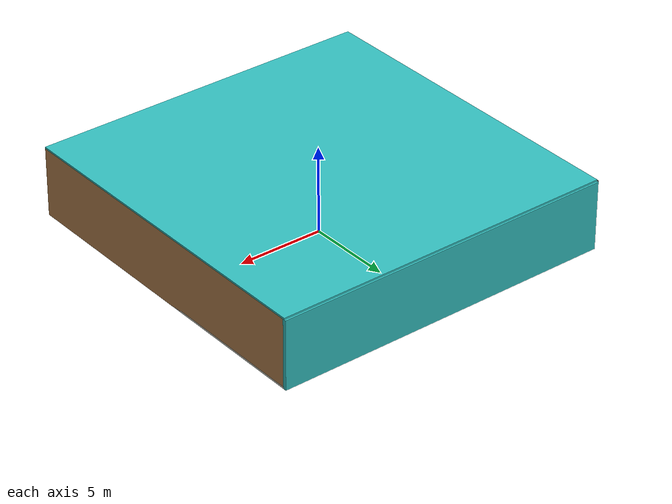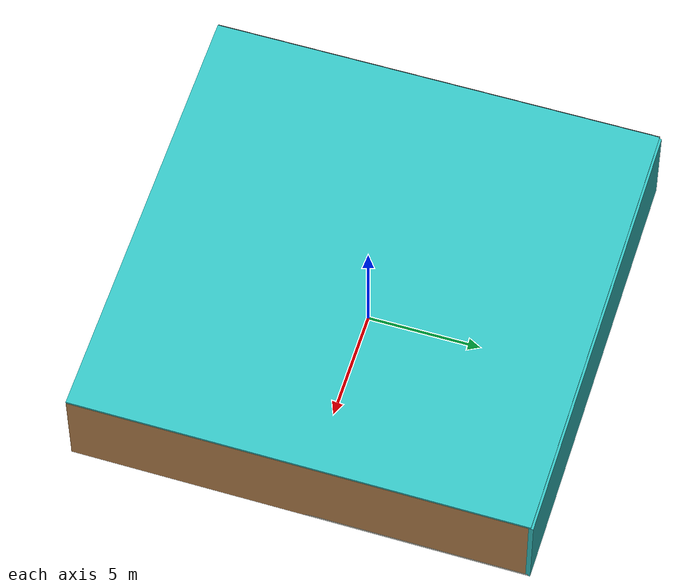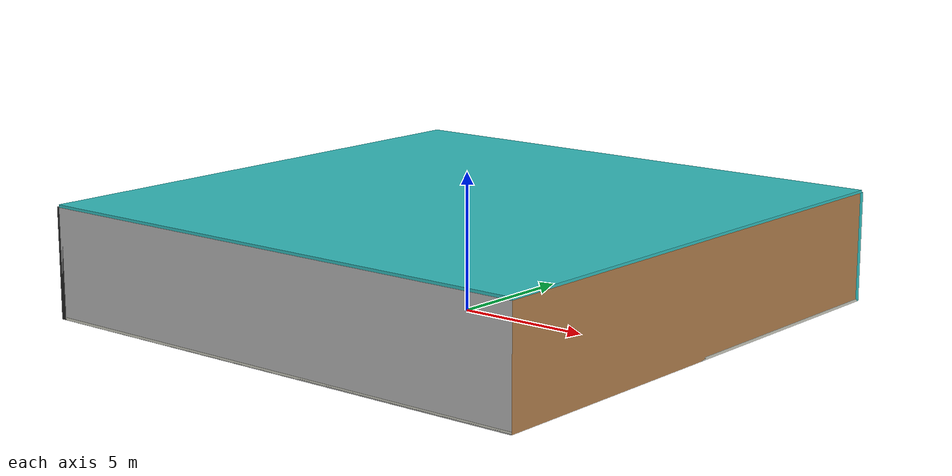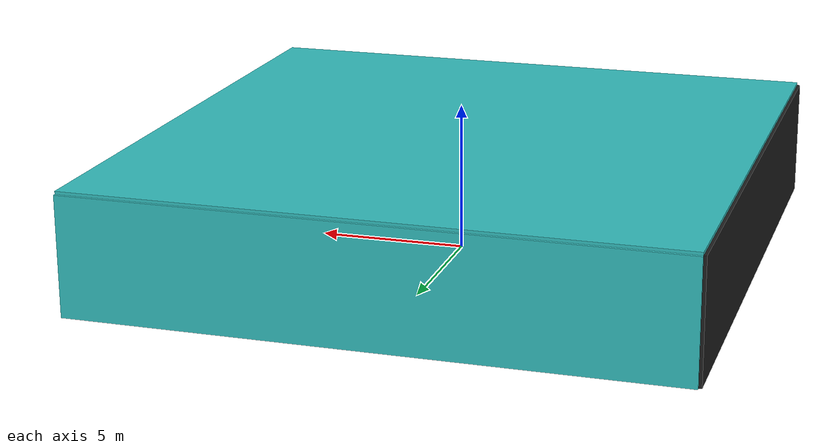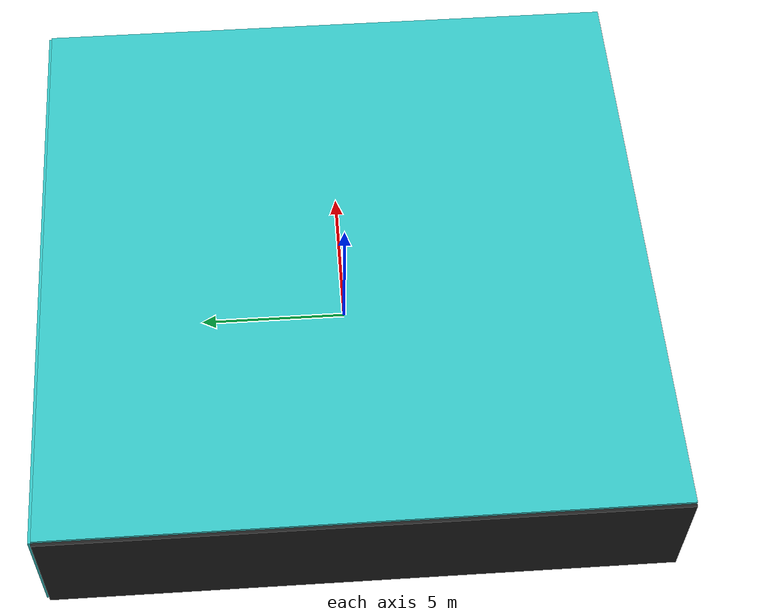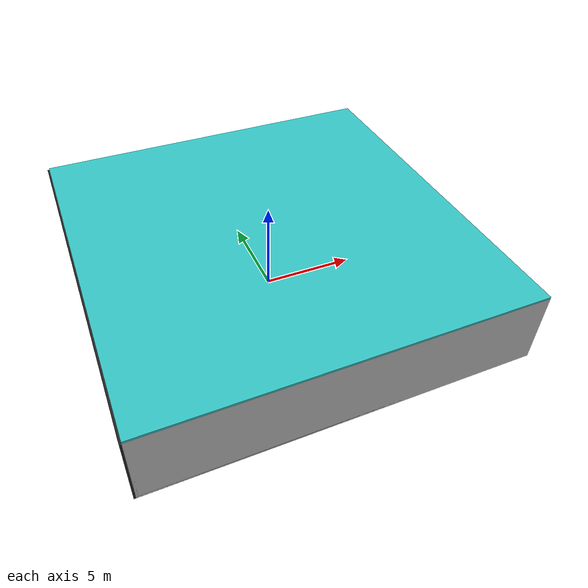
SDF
<sdf version="1.4">
 <world name="default">
  <physics type="ode">
   <max_step_size>0.001</max_step_size>
   <real_time_factor>1</real_time_factor>
   <real_time_update_rate>1000</real_time_update_rate>
   <gravity>0 0 -9.8</gravity>
  </physics>
  <scene><ambient>0.4 0.4 0.4 1</ambient><background>0.7 0.7 0.7 1</background><shadows>1</shadows></scene>
  <model name="Surrounding">
   <static>1</static>
   <link name="Ceiling">
    <collision name="Ceiling_Collision"><geometry><box><size>20 20 0.1</size></box></geometry></collision>
    <visual name="Ceiling_Visual">
     <geometry><box><size>20 20 0.1</size></box></geometry>
     <material>
      <script><uri>file://media/materials/scripts/gazebo.material</uri><name>Gazebo/TurquoiseGlow</name></script>
     </material>
    </visual>
    <pose>0 0 4.05 0 0 0</pose>
   </link>
   <link name="Wall_South">
    <collision name="Wall_South_Collision">
     <geometry><box><size>20 0 4</size></box></geometry>
     <pose>0 0 2 0 -0 0</pose>
    </collision>
    <visual name="Wall_South_Visual">
     <pose>0 0 2 0 -0 0</pose>
     <geometry><box><size>20 0 4</size></box></geometry>
     <material>
      <script><uri>file://media/materials/scripts/gazebo.material</uri><name>Gazebo/PioneerBody</name></script>
     </material>
    </visual>
    <velocity_decay><linear>0</linear><angular>0</angular></velocity_decay>
    <pose>0 -10 0 0 -0 0</pose>
   </link>
   <link name="Wall_East">
    <collision name="Wall_21_Collision">
     <geometry><box><size>20 0 4</size></box></geometry>
     <pose>0 0 2 0 -0 0</pose>
    </collision>
    <visual name="Wall_21_Visual">
     <pose>0 0 2 0 -0 0</pose>
     <geometry><box><size>20 0 4</size></box></geometry>
     <material>
      <script><uri>file://media/materials/scripts/gazebo.material</uri><name>Gazebo/Wood</name></script>
     </material>
    </visual>
    <velocity_decay><linear>0</linear><angular>0</angular></velocity_decay>
    <pose>10 0 0 0 -0 1.5708</pose>
   </link>
   <link name="Wall_North">
    <collision name="Wall_22_Collision">
     <geometry><box><size>20 0.2 4</size></box></geometry>
     <pose>0 0 2 0 -0 0</pose>
    </collision>
    <visual name="Wall_22_Visual">
     <pose>0 0 2 0 -0 0</pose>
     <geometry><box><size>20 0.2 4</size></box></geometry>
     <material>
      <script><uri>file://media/materials/scripts/gazebo.material</uri><name>Gazebo/TurquoiseGlow</name></script>
     </material>
    </visual>
    <velocity_decay><linear>0</linear><angular>0</angular></velocity_decay>
    <pose>0 10 0 0 -0 0</pose>
   </link>
   <link name="Wall_West">
    <collision name="Wall_23_Collision">
     <geometry><box><size>20 0.2 4</size></box></geometry>
     <pose>0 0 2 0 -0 0</pose>
    </collision>
    <visual name="Wall_23_Visual">
     <pose>0 0 2 0 -0 0</pose>
     <geometry><box><size>20 0.2 4</size></box></geometry>
     <material>
      <script><uri>file://media/materials/scripts/gazebo.material</uri><name>Gazebo/Black</name></script>
     </material>
    </visual>
    <velocity_decay><linear>0</linear><angular>0</angular></velocity_decay>
    <pose>-10 0 0 0 0 -1.5708</pose>
   </link>
   <link name="Ground_link">
    <collision name="collision">
     <pose>0 0 .05 0 -0 0</pose>
     <geometry><box><size>20 20 0.1</size></box></geometry>
    </collision>
    <visual name="visual">
     <pose>0 0 .05 0 -0 0</pose>
     <geometry><box><size>20 20 0.1</size></box></geometry>
     <material>
      <script><uri>file://media/materials/scripts/gazebo.material</uri><name>Gazebo/PaintedWall</name></script>
     </material>
    </visual>
   </link>
   <static>1</static>
  </model>
  <spherical_coordinates>
   <surface_model>EARTH_WGS84</surface_model>
   <latitude_deg>0</latitude_deg>
   <longitude_deg>0</longitude_deg>
   <elevation>0</elevation>
   <heading_deg>0</heading_deg>
  </spherical_coordinates>
  <light name="lightball_0" type="diffuse">
   <diffuse>0.8 0.8 0.8 1</diffuse>
   <specular>0.2 0.2 0.2 1</specular>
   <attenuation>
    <range>100</range>
    <constant>0.7</constant>
    <linear>0.01</linear>
    <quadratic>0.001</quadratic>
   </attenuation>
   <direction>-0.5 0.1 -0.9</direction>
   <pose>-2.86055813701 -0.61922393987 3.55806867931 0 0 0</pose>
  </light>
  <light name="lightball_1" type="diffuse">
   <diffuse>0.8 0.8 0.8 1</diffuse>
   <specular>0.2 0.2 0.2 1</specular>
   <attenuation>
    <range>100</range>
    <constant>0.7</constant>
    <linear>0.01</linear>
    <quadratic>0.001</quadratic>
   </attenuation>
   <direction>-0.5 0.1 -0.9</direction>
   <pose>-1.68249780813 3.64378113337 1.90485304354 0 0 0</pose>
  </light>
  <light name="lightball_2" type="diffuse">
   <diffuse>0.8 0.8 0.8 1</diffuse>
   <specular>0.2 0.2 0.2 1</specular>
   <attenuation>
    <range>100</range>
    <constant>0.7</constant>
    <linear>0.01</linear>
    <quadratic>0.001</quadratic>
   </attenuation>
   <direction>-0.5 0.1 -0.9</direction>
   <pose>-7.87025940741 -4.13384578508 1.72178225066 0 0 0</pose>
  </light>
  <light name="lightball_3" type="diffuse">
   <diffuse>0.8 0.8 0.8 1</diffuse>
   <specular>0.2 0.2 0.2 1</specular>
   <attenuation>
    <range>100</range>
    <constant>0.7</constant>
    <linear>0.01</linear>
    <quadratic>0.001</quadratic>
   </attenuation>
   <direction>-0.5 0.1 -0.9</direction>
   <pose>1.78349681373 -5.4864089704 2.38876002879 0 0 0</pose>
  </light>
  <light name="lightball_4" type="diffuse">
   <diffuse>0.8 0.8 0.8 1</diffuse>
   <specular>0.2 0.2 0.2 1</specular>
   <attenuation>
    <range>100</range>
    <constant>0.7</constant>
    <linear>0.01</linear>
    <quadratic>0.001</quadratic>
   </attenuation>
   <direction>-0.5 0.1 -0.9</direction>
   <pose>-9.03250415395 5.31188297248 1.9722126481 0 0 0</pose>
  </light>
  <light name="lightball_5" type="diffuse">
   <diffuse>0.8 0.8 0.8 1</diffuse>
   <specular>0.2 0.2 0.2 1</specular>
   <attenuation>
    <range>100</range>
    <constant>0.7</constant>
    <linear>0.01</linear>
    <quadratic>0.001</quadratic>
   </attenuation>
   <direction>-0.5 0.1 -0.9</direction>
   <pose>-0.614810270882 -3.60163388967 1.89494659718 0 0 0</pose>
  </light>
  <light name="lightball_6" type="diffuse">
   <diffuse>0.8 0.8 0.8 1</diffuse>
   <specular>0.2 0.2 0.2 1</specular>
   <attenuation>
    <range>100</range>
    <constant>0.7</constant>
    <linear>0.01</linear>
    <quadratic>0.001</quadratic>
   </attenuation>
   <direction>-0.5 0.1 -0.9</direction>
   <pose>-8.38283693558 8.00505957734 2.76259843624 0 0 0</pose>
  </light>
  <light name="lightball_7" type="diffuse">
   <diffuse>0.8 0.8 0.8 1</diffuse>
   <specular>0.2 0.2 0.2 1</specular>
   <attenuation>
    <range>100</range>
    <constant>0.7</constant>
    <linear>0.01</linear>
    <quadratic>0.001</quadratic>
   </attenuation>
   <direction>-0.5 0.1 -0.9</direction>
   <pose>-8.03886240677 1.39525036581 0.829179771148 0 0 0</pose>
  </light>
  <include><uri>model://table</uri><pose>-4.4543494015 -4.17243395251 0 0 0 0.295884668201</pose></include>
 </world>
</sdf>

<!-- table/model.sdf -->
<sdf version="1.5">
  <model name="table">
    <static>true</static>
    <link name="link">
      <collision name="surface">
        <pose>0 0 1.0 0 0 0</pose>
        <geometry>
          <box>
            <size>1.5 0.8 0.03</size>
          </box>
        </geometry>
        <surface>
          <friction>
            <ode>
              <mu>0.6</mu>
              <mu2>0.6</mu2>
            </ode>
          </friction>
        </surface>
      </collision>
      <visual name="visual1">
        <pose>0 0 1.0 0 0 0</pose>
        <geometry>
          <box>
            <size>1.5 0.8 0.03</size>
          </box>
        </geometry>
        <material>
          <script>
            <uri>model://media/materials/scripts/gazebo.material</uri>
            <name>Gazebo/Wood</name>
          </script>
        </material>
      </visual>
      <collision name="front_left_leg">
        <pose>0.68 0.38 0.5 0 0 0</pose>
        <geometry>
          <cylinder>
            <radius>0.02</radius>
            <length>1.0</length>
          </cylinder>
        </geometry>
      </collision>
      <visual name="front_left_leg">
        <pose>0.68 0.38 0.5 0 0 0</pose>
        <geometry>
          <cylinder>
            <radius>0.02</radius>
            <length>1.0</length>
          </cylinder>
        </geometry>
        <material>
          <script>
            <uri>model://media/materials/scripts/gazebo.material</uri>
            <name>Gazebo/Grey</name>
          </script>
        </material>
      </visual>
      <collision name="front_right_leg">
        <pose>0.68 -0.38 0.5 0 0 0</pose>
        <geometry>
          <cylinder>
            <radius>0.02</radius>
            <length>1.0</length>
          </cylinder>
        </geometry>
      </collision>
      <visual name="front_right_leg">
        <pose>0.68 -0.38 0.5 0 0 0</pose>
        <geometry>
          <cylinder>
            <radius>0.02</radius>
            <length>1.0</length>
          </cylinder>
        </geometry>
        <material>
          <script>
            <uri>model://media/materials/scripts/gazebo.material</uri>
            <name>Gazebo/Grey</name>
          </script>
        </material>
      </visual>
      <collision name="back_right_leg">
        <pose>-0.68 -0.38 0.5 0 0 0</pose>
        <geometry>
          <cylinder>
            <radius>0.02</radius>
            <length>1.0</length>
          </cylinder>
        </geometry>
      </collision>
      <visual name="back_right_leg">
        <pose>-0.68 -0.38 0.5 0 0 0</pose>
        <geometry>
          <cylinder>
            <radius>0.02</radius>
            <length>1.0</length>
          </cylinder>
        </geometry>
        <material>
          <script>
            <uri>model://media/materials/scripts/gazebo.material</uri>
            <name>Gazebo/Grey</name>
          </script>
        </material>
      </visual>
      <collision name="back_left_leg">
        <pose>-0.68 0.38 0.5 0 0 0</pose>
        <geometry>
          <cylinder>
            <radius>0.02</radius>
            <length>1.0</length>
          </cylinder>
        </geometry>
      </collision>
      <visual name="back_left_leg">
        <pose>-0.68 0.38 0.5 0 0 0</pose>
        <geometry>
          <cylinder>
            <radius>0.02</radius>
            <length>1.0</length>
          </cylinder>
        </geometry>
        <material>
          <script>
            <uri>model://media/materials/scripts/gazebo.material</uri>
            <name>Gazebo/Grey</name>
          </script>
        </material>
      </visual>
    </link>
  </model>
</sdf>
